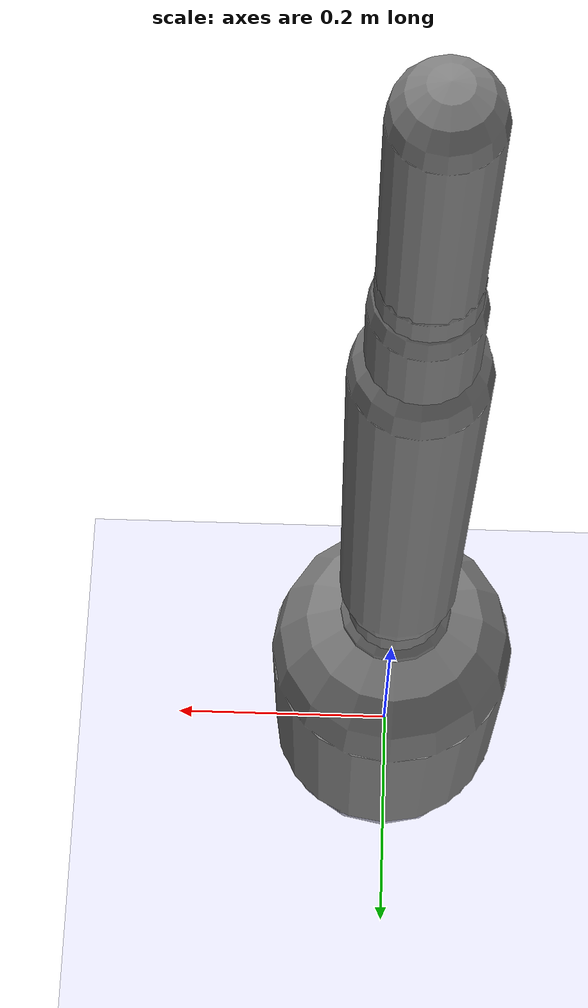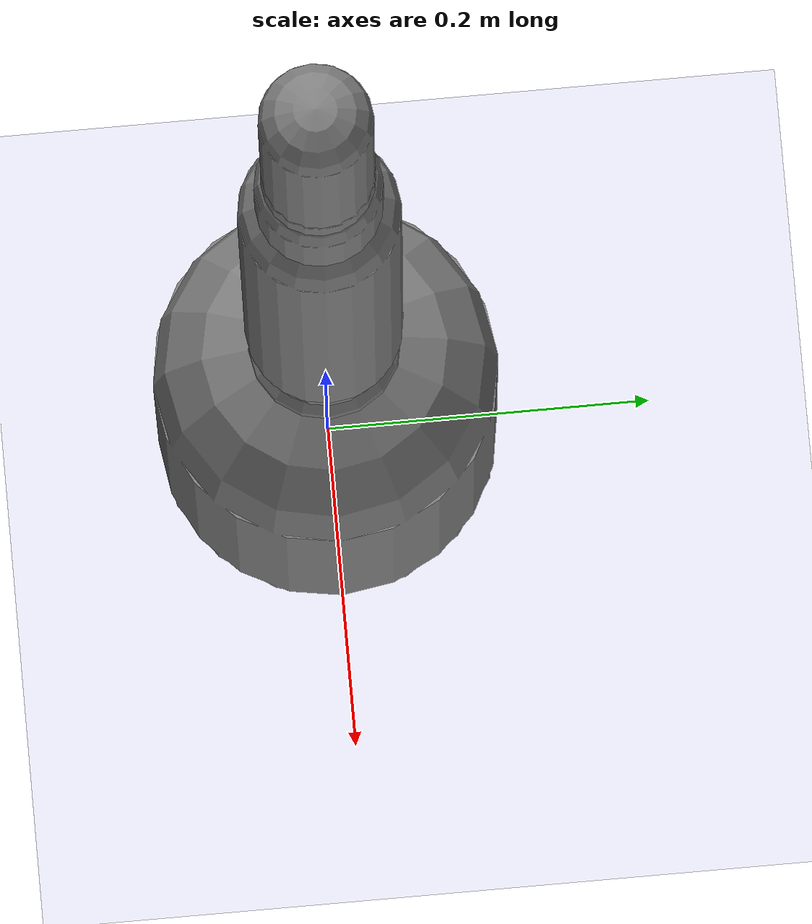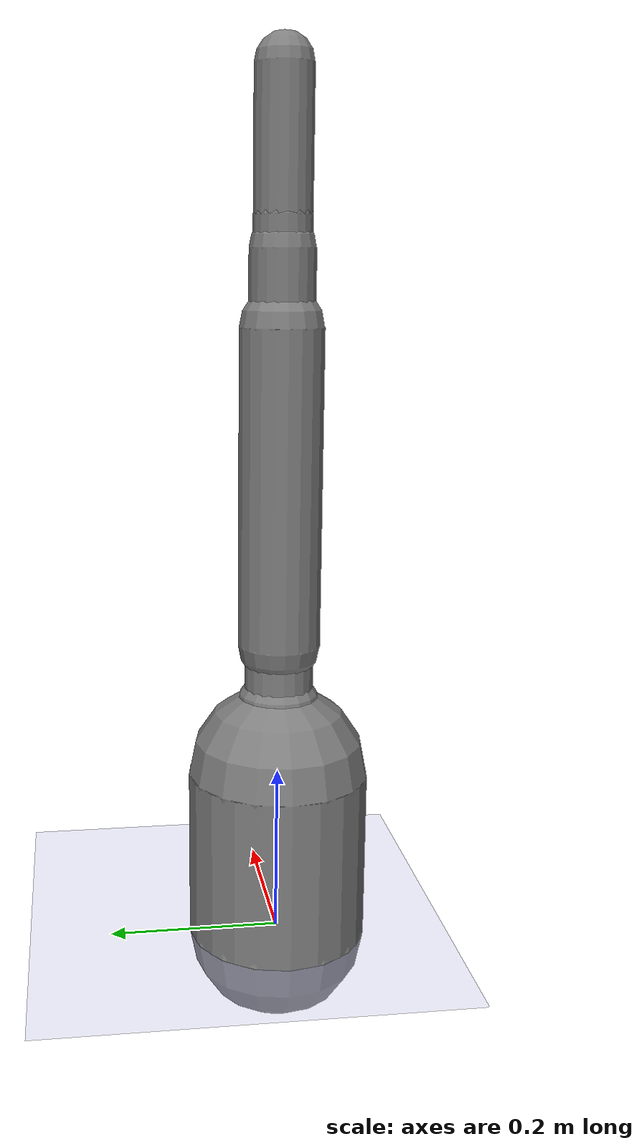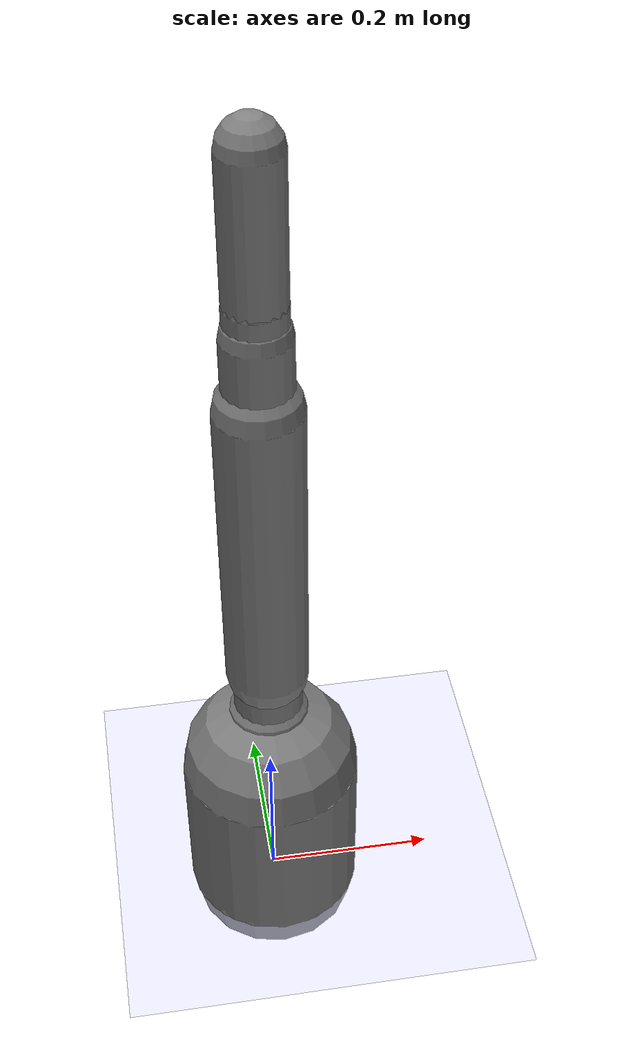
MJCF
<?xml version='1.0' encoding='UTF-8'?>
<mujoco model="robot_model">
  <worldbody>
    <light name="light" pos="0 -3 10" dir="0 0.5 -1" diffuse=".8 .8 .8" specular="0.1 0.1 0.1"/>
    <geom name="floor" type="plane" size="10.0 10.0 0.1" pos="0 0 0" rgba="0.8 0.8 1 1"/>
    <body name="limb0" pos="0 0 0">
      <geom type="capsule" fromto="0 0 0 0 0 0.20109540006805926" size="0.10526828432972256" density="1085.9234212700555"/>
      <site type="sphere" size="0.01" name="limb0_site0" pos="0 0 0.10888536070733065"/>
      <site type="sphere" size="0.01" name="limb0_site1" pos="0 0 0.08338538391673952"/>
      <freejoint name="limb0_root"/>
      <body name="limb1" pos="0 0 0.10888536070733065">
        <geom type="capsule" fromto="0 0 0 0 0 0.17026224824102362" size="0.04918621785719776" density="1090.5431378799092"/>
        <site type="sphere" size="0.01" name="limb1_site0" pos="0 0 0.10477685261485124"/>
        <body name="limb2" pos="0 0 0.10477685261485124">
          <geom type="capsule" fromto="0 0 0 0 0 0.3682497658774522" size="0.024971331059982557" density="917.7516092594001"/>
          <site type="sphere" size="0.01" name="limb2_site0" pos="0 0 0.1432202233250303"/>
          <site type="sphere" size="0.01" name="limb2_site1" pos="0 0 0.29324622609582907"/>
          <site type="sphere" size="0.01" name="limb2_site2" pos="0 0 0.1099947809790686"/>
          <body name="limb3" pos="0 0 0.1432202233250303">
            <geom type="capsule" fromto="0 0 0 0 0 0.36018371050712655" size="0.04742167937922778" density="950.7573844567521"/>
            <site type="sphere" size="0.01" name="limb3_site0" pos="0 0 0.3364272593522445"/>
            <site type="sphere" size="0.01" name="limb3_site1" pos="0 0 0.14105478471532545"/>
            <site type="sphere" size="0.01" name="limb3_site2" pos="0 0 0.0862169741592256"/>
            <body name="limb4" pos="0 0 0.3364272593522445">
              <geom type="capsule" fromto="0 0 0 0 0 0.29433414353271564" size="0.032409675022358225" density="1111.5902674792003"/>
              <joint name="joint_limb3_limb4_0" type="hinge" axis="0 1 0" range="-55.77951967090702 55.77951967090702" damping="5.0"/>
            </body>
            <body name="limb5" pos="0 0 0.14105478471532545">
              <geom type="capsule" fromto="0 0 0 0 0 0.33772001207987873" size="0.03287477564303769" density="670.3289804057066"/>
              <joint name="joint_limb3_limb5_0" type="hinge" axis="1 0 0" range="-42.71575935333797 42.71575935333797" damping="5.0"/>
            </body>
            <body name="limb6" pos="0 0 0.0862169741592256">
              <geom type="capsule" fromto="0 0 0 0 0 0.4330576590613591" size="0.023360613743295393" density="1029.6786459909467"/>
              <joint name="joint_limb3_limb6_0" type="hinge" axis="0 0 1" range="-107.64842308107038 107.64842308107038" damping="5.0"/>
            </body>
            <joint name="joint_limb2_limb3_0" type="hinge" axis="0 0 1" range="-33.50965050224112 33.50965050224112" damping="5.0"/>
          </body>
          <body name="limb7" pos="0 0 0.29324622609582907">
            <geom type="capsule" fromto="0 0 0 0 0 0.16011178675793564" size="0.03344468242182641" density="760.2714933194296"/>
            <joint name="joint_limb2_limb7_0" type="hinge" axis="0 0 1" range="-25.20213010644096 25.20213010644096" damping="5.0"/>
          </body>
          <body name="limb8" pos="0 0 0.1099947809790686">
            <geom type="capsule" fromto="0 0 0 0 0 0.13630121824764876" size="0.027940521780370212" density="864.2659087894805"/>
            <site type="sphere" size="0.01" name="limb8_site0" pos="0 0 0.12637229508700465"/>
            <site type="sphere" size="0.01" name="limb8_site1" pos="0 0 0.12934217894241823"/>
            <body name="limb9" pos="0 0 0.12637229508700465">
              <geom type="capsule" fromto="0 0 0 0 0 0.1421981118280918" size="0.03460440672979314" density="903.2865212317674"/>
              <joint name="joint_limb8_limb9_0" type="hinge" axis="0 1 0" range="-115.45904936907372 115.45904936907372" damping="5.0"/>
            </body>
            <body name="limb10" pos="0 0 0.12934217894241823">
              <geom type="capsule" fromto="0 0 0 0 0 0.34808538080615115" size="0.03700914499396302" density="1196.0772041882592"/>
              <joint name="joint_limb8_limb10_0" type="hinge" axis="0 1 0" range="-66.00451393090961 66.00451393090961" damping="5.0"/>
            </body>
            <joint name="joint_limb2_limb8_0" type="hinge" axis="0 0 1" range="-39.95154439682133 39.95154439682133" damping="5.0"/>
          </body>
          <joint name="joint_limb1_limb2_0" type="hinge" axis="1 0 0" range="-58.367755426188346 58.367755426188346" damping="5.0"/>
        </body>
        <joint name="joint_limb0_limb1_0" type="hinge" axis="1 0 0" range="-49.97118905373848 49.97118905373848" damping="5.0"/>
      </body>
      <body name="limb11" pos="0 0 0.08338538391673952">
        <geom type="capsule" fromto="0 0 0 0 0 0.3117248640787082" size="0.03989690781950476" density="1028.628560571046"/>
        <joint name="joint_limb0_limb11_0" type="hinge" axis="1 0 0" range="-91.11428779897498 91.11428779897498" damping="5.0"/>
      </body>
    </body>
  </worldbody>
  <actuator>
    <position name="position_actuator_joint_limb0_limb1_0" joint="joint_limb0_limb1_0" gear="1.1340308317964878" inheritrange="1" kp="10.0"/>
    <position name="position_actuator_joint_limb1_limb2_0" joint="joint_limb1_limb2_0" gear="1.9958149036838164" inheritrange="1" kp="10.0"/>
    <position name="position_actuator_joint_limb2_limb3_0" joint="joint_limb2_limb3_0" gear="1.5822325102911226" inheritrange="1" kp="10.0"/>
    <position name="position_actuator_joint_limb3_limb4_0" joint="joint_limb3_limb4_0" gear="1.3572947460946414" inheritrange="1" kp="10.0"/>
    <position name="position_actuator_joint_limb3_limb5_0" joint="joint_limb3_limb5_0" gear="1.4347807170290636" inheritrange="1" kp="10.0"/>
    <position name="position_actuator_joint_limb3_limb6_0" joint="joint_limb3_limb6_0" gear="0.5878520522077915" inheritrange="1" kp="10.0"/>
    <position name="position_actuator_joint_limb2_limb7_0" joint="joint_limb2_limb7_0" gear="1.1068277597322922" inheritrange="1" kp="10.0"/>
    <position name="position_actuator_joint_limb2_limb8_0" joint="joint_limb2_limb8_0" gear="1.9131696657597468" inheritrange="1" kp="10.0"/>
    <position name="position_actuator_joint_limb8_limb9_0" joint="joint_limb8_limb9_0" gear="1.2498437205314705" inheritrange="1" kp="10.0"/>
    <position name="position_actuator_joint_limb8_limb10_0" joint="joint_limb8_limb10_0" gear="1.636593267962437" inheritrange="1" kp="10.0"/>
    <position name="position_actuator_joint_limb0_limb11_0" joint="joint_limb0_limb11_0" gear="1.8980895299200673" inheritrange="1" kp="10.0"/>
  </actuator>
</mujoco>
